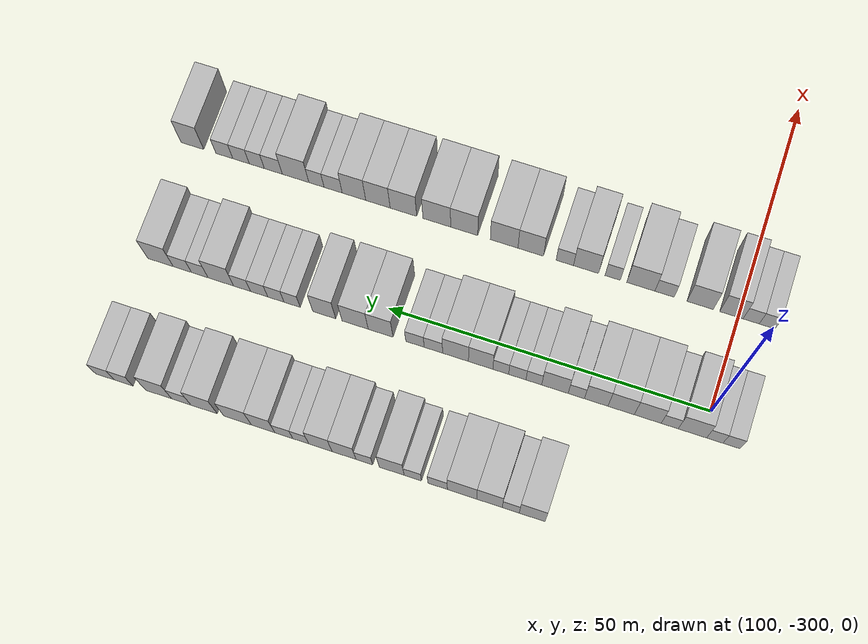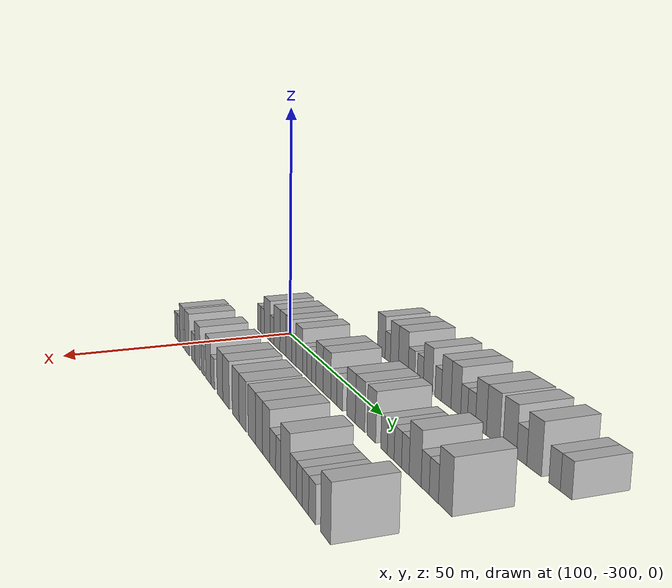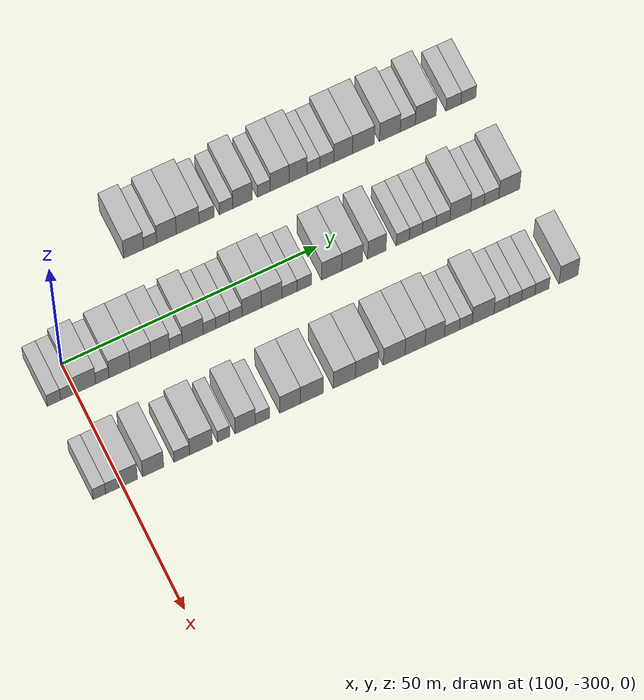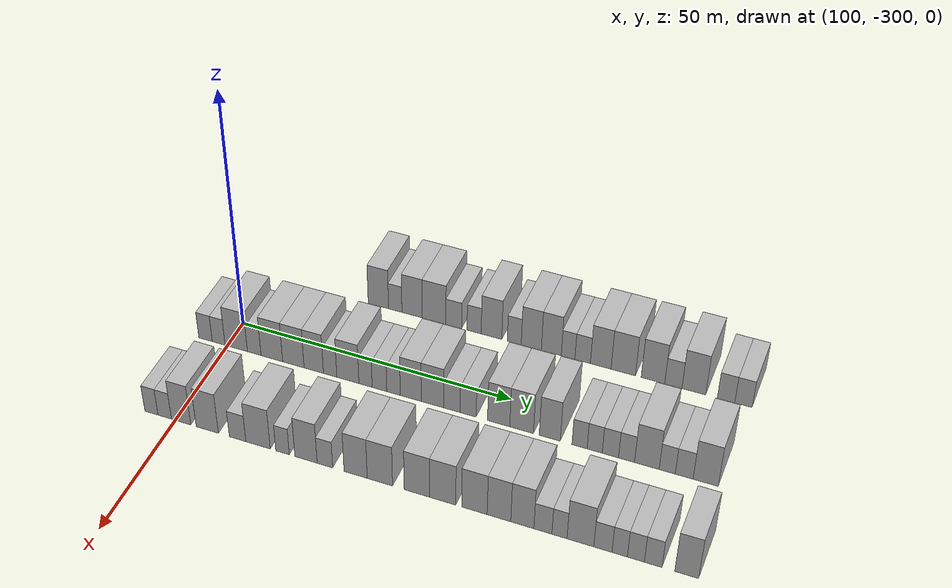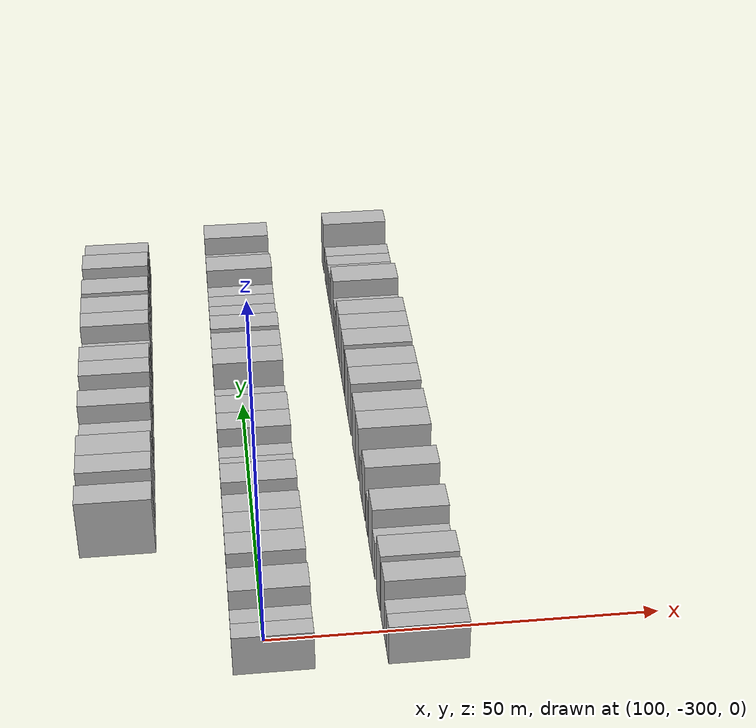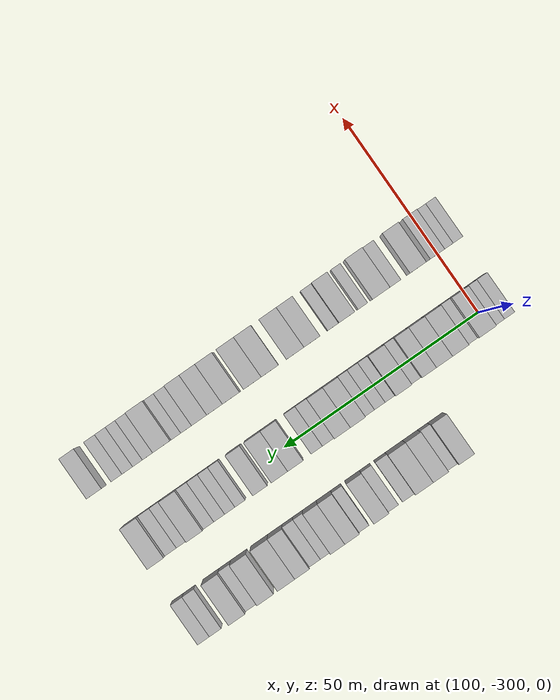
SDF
<sdf version="1.6">
 <world name="default">
  <model name="building_547">
   <static>1</static>
   <pose>82.0000 -279.7704 0 0.000000 0.000000 0.000000</pose>
   <link name="link">
    <pose>0 0 4.50 0 0 0</pose>
    <collision name="collision"><geometry><box><size>10.0000 3.9031 9.0000</size></box></geometry></collision>
    <visual name="visual">
     <cast_shadows>0</cast_shadows>
     <geometry><box><size>10.0000 3.9031 9.0000</size></box></geometry>
     <material>
      <script>
       <uri>model://HANNAS_wall/materials/scripts</uri>
       <uri>model://HANNAS_wall/materials/textures</uri>
       <name>vrc/HANNAS_wall</name>
      </script>
     </material>
    </visual>
   </link>
  </model>
  <model name="building_548">
   <static>1</static>
   <pose>82.0000 -276.5370 0 0.000000 0.000000 0.000000</pose>
   <link name="link">
    <pose>0 0 3.00 0 0 0</pose>
    <collision name="collision"><geometry><box><size>10.0000 2.5638 6.0000</size></box></geometry></collision>
    <visual name="visual">
     <cast_shadows>0</cast_shadows>
     <geometry><box><size>10.0000 2.5638 6.0000</size></box></geometry>
     <material>
      <script>
       <uri>model://HANNAS_wall/materials/scripts</uri>
       <uri>model://HANNAS_wall/materials/textures</uri>
       <name>vrc/HANNAS_wall</name>
      </script>
     </material>
    </visual>
   </link>
  </model>
  <model name="building_549">
   <static>1</static>
   <pose>82.0000 -273.3241 0 0.000000 0.000000 0.000000</pose>
   <link name="link">
    <pose>0 0 4.50 0 0 0</pose>
    <collision name="collision"><geometry><box><size>10.0000 3.8620 9.0000</size></box></geometry></collision>
    <visual name="visual">
     <cast_shadows>0</cast_shadows>
     <geometry><box><size>10.0000 3.8620 9.0000</size></box></geometry>
     <material>
      <script>
       <uri>model://HANNAS_wall/materials/scripts</uri>
       <uri>model://HANNAS_wall/materials/textures</uri>
       <name>vrc/HANNAS_wall</name>
      </script>
     </material>
    </visual>
   </link>
  </model>
  <model name="building_550">
   <static>1</static>
   <pose>82.0000 -269.1544 0 0.000000 0.000000 0.000000</pose>
   <link name="link">
    <pose>0 0 4.50 0 0 0</pose>
    <collision name="collision"><geometry><box><size>10.0000 4.4774 9.0000</size></box></geometry></collision>
    <visual name="visual">
     <cast_shadows>0</cast_shadows>
     <geometry><box><size>10.0000 4.4774 9.0000</size></box></geometry>
     <material>
      <script>
       <uri>model://HANNAS_wall/materials/scripts</uri>
       <uri>model://HANNAS_wall/materials/textures</uri>
       <name>vrc/HANNAS_wall</name>
      </script>
     </material>
    </visual>
   </link>
  </model>
  <model name="building_551">
   <static>1</static>
   <pose>82.0000 -265.4341 0 0.000000 0.000000 0.000000</pose>
   <link name="link">
    <pose>0 0 3.00 0 0 0</pose>
    <collision name="collision"><geometry><box><size>10.0000 2.9632 6.0000</size></box></geometry></collision>
    <visual name="visual">
     <cast_shadows>0</cast_shadows>
     <geometry><box><size>10.0000 2.9632 6.0000</size></box></geometry>
     <material>
      <script>
       <uri>model://HANNAS_wall/materials/scripts</uri>
       <uri>model://HANNAS_wall/materials/textures</uri>
       <name>vrc/HANNAS_wall</name>
      </script>
     </material>
    </visual>
   </link>
  </model>
  <model name="building_552">
   <static>1</static>
   <pose>82.0000 -261.6336 0 0.000000 0.000000 0.000000</pose>
   <link name="link">
    <pose>0 0 3.00 0 0 0</pose>
    <collision name="collision"><geometry><box><size>10.0000 2.6379 6.0000</size></box></geometry></collision>
    <visual name="visual">
     <cast_shadows>0</cast_shadows>
     <geometry><box><size>10.0000 2.6379 6.0000</size></box></geometry>
     <material>
      <script>
       <uri>model://HANNAS_wall/materials/scripts</uri>
       <uri>model://HANNAS_wall/materials/textures</uri>
       <name>vrc/HANNAS_wall</name>
      </script>
     </material>
    </visual>
   </link>
  </model>
  <model name="building_553">
   <static>1</static>
   <pose>82.0000 -258.3983 0 0.000000 0.000000 0.000000</pose>
   <link name="link">
    <pose>0 0 4.50 0 0 0</pose>
    <collision name="collision"><geometry><box><size>10.0000 3.8327 9.0000</size></box></geometry></collision>
    <visual name="visual">
     <cast_shadows>0</cast_shadows>
     <geometry><box><size>10.0000 3.8327 9.0000</size></box></geometry>
     <material>
      <script>
       <uri>model://HANNAS_wall/materials/scripts</uri>
       <uri>model://HANNAS_wall/materials/textures</uri>
       <name>vrc/HANNAS_wall</name>
      </script>
     </material>
    </visual>
   </link>
  </model>
  <model name="building_554">
   <static>1</static>
   <pose>82.0000 -254.1981 0 0.000000 0.000000 0.000000</pose>
   <link name="link">
    <pose>0 0 3.00 0 0 0</pose>
    <collision name="collision"><geometry><box><size>10.0000 2.5676 6.0000</size></box></geometry></collision>
    <visual name="visual">
     <cast_shadows>0</cast_shadows>
     <geometry><box><size>10.0000 2.5676 6.0000</size></box></geometry>
     <material>
      <script>
       <uri>model://HANNAS_wall/materials/scripts</uri>
       <uri>model://HANNAS_wall/materials/textures</uri>
       <name>vrc/HANNAS_wall</name>
      </script>
     </material>
    </visual>
   </link>
  </model>
  <model name="building_555">
   <static>1</static>
   <pose>82.0000 -251.0721 0 0.000000 0.000000 0.000000</pose>
   <link name="link">
    <pose>0 0 4.50 0 0 0</pose>
    <collision name="collision"><geometry><box><size>10.0000 3.6845 9.0000</size></box></geometry></collision>
    <visual name="visual">
     <cast_shadows>0</cast_shadows>
     <geometry><box><size>10.0000 3.6845 9.0000</size></box></geometry>
     <material>
      <script>
       <uri>model://HANNAS_wall/materials/scripts</uri>
       <uri>model://HANNAS_wall/materials/textures</uri>
       <name>vrc/HANNAS_wall</name>
      </script>
     </material>
    </visual>
   </link>
  </model>
  <model name="building_556">
   <static>1</static>
   <pose>82.0000 -247.4219 0 0.000000 0.000000 0.000000</pose>
   <link name="link">
    <pose>0 0 4.50 0 0 0</pose>
    <collision name="collision"><geometry><box><size>10.0000 3.6160 9.0000</size></box></geometry></collision>
    <visual name="visual">
     <cast_shadows>0</cast_shadows>
     <geometry><box><size>10.0000 3.6160 9.0000</size></box></geometry>
     <material>
      <script>
       <uri>model://HANNAS_wall/materials/scripts</uri>
       <uri>model://HANNAS_wall/materials/textures</uri>
       <name>vrc/HANNAS_wall</name>
      </script>
     </material>
    </visual>
   </link>
  </model>
  <model name="building_557">
   <static>1</static>
   <pose>82.0000 -244.3826 0 0.000000 0.000000 0.000000</pose>
   <link name="link">
    <pose>0 0 3.00 0 0 0</pose>
    <collision name="collision"><geometry><box><size>10.0000 2.4626 6.0000</size></box></geometry></collision>
    <visual name="visual">
     <cast_shadows>0</cast_shadows>
     <geometry><box><size>10.0000 2.4626 6.0000</size></box></geometry>
     <material>
      <script>
       <uri>model://HANNAS_wall/materials/scripts</uri>
       <uri>model://HANNAS_wall/materials/textures</uri>
       <name>vrc/HANNAS_wall</name>
      </script>
     </material>
    </visual>
   </link>
  </model>
  <model name="building_558">
   <static>1</static>
   <pose>82.0000 -241.7609 0 0.000000 0.000000 0.000000</pose>
   <link name="link">
    <pose>0 0 3.00 0 0 0</pose>
    <collision name="collision"><geometry><box><size>10.0000 2.7807 6.0000</size></box></geometry></collision>
    <visual name="visual">
     <cast_shadows>0</cast_shadows>
     <geometry><box><size>10.0000 2.7807 6.0000</size></box></geometry>
     <material>
      <script>
       <uri>model://HANNAS_wall/materials/scripts</uri>
       <uri>model://HANNAS_wall/materials/textures</uri>
       <name>vrc/HANNAS_wall</name>
      </script>
     </material>
    </visual>
   </link>
  </model>
  <model name="building_559">
   <static>1</static>
   <pose>82.0000 -238.5294 0 0.000000 0.000000 0.000000</pose>
   <link name="link">
    <pose>0 0 4.50 0 0 0</pose>
    <collision name="collision"><geometry><box><size>10.0000 3.6822 9.0000</size></box></geometry></collision>
    <visual name="visual">
     <cast_shadows>0</cast_shadows>
     <geometry><box><size>10.0000 3.6822 9.0000</size></box></geometry>
     <material>
      <script>
       <uri>model://HANNAS_wall/materials/scripts</uri>
       <uri>model://HANNAS_wall/materials/textures</uri>
       <name>vrc/HANNAS_wall</name>
      </script>
     </material>
    </visual>
   </link>
  </model>
  <model name="building_560">
   <static>1</static>
   <pose>82.0000 -234.5174 0 0.000000 0.000000 0.000000</pose>
   <link name="link">
    <pose>0 0 4.50 0 0 0</pose>
    <collision name="collision"><geometry><box><size>10.0000 4.3418 9.0000</size></box></geometry></collision>
    <visual name="visual">
     <cast_shadows>0</cast_shadows>
     <geometry><box><size>10.0000 4.3418 9.0000</size></box></geometry>
     <material>
      <script>
       <uri>model://HANNAS_wall/materials/scripts</uri>
       <uri>model://HANNAS_wall/materials/textures</uri>
       <name>vrc/HANNAS_wall</name>
      </script>
     </material>
    </visual>
   </link>
  </model>
  <model name="building_561">
   <static>1</static>
   <pose>82.0000 -229.2752 0 0.000000 0.000000 0.000000</pose>
   <link name="link">
    <pose>0 0 4.50 0 0 0</pose>
    <collision name="collision"><geometry><box><size>10.0000 4.1427 9.0000</size></box></geometry></collision>
    <visual name="visual">
     <cast_shadows>0</cast_shadows>
     <geometry><box><size>10.0000 4.1427 9.0000</size></box></geometry>
     <material>
      <script>
       <uri>model://HANNAS_wall/materials/scripts</uri>
       <uri>model://HANNAS_wall/materials/textures</uri>
       <name>vrc/HANNAS_wall</name>
      </script>
     </material>
    </visual>
   </link>
  </model>
  <model name="building_562">
   <static>1</static>
   <pose>82.0000 -225.7088 0 0.000000 0.000000 0.000000</pose>
   <link name="link">
    <pose>0 0 3.00 0 0 0</pose>
    <collision name="collision"><geometry><box><size>10.0000 2.9901 6.0000</size></box></geometry></collision>
    <visual name="visual">
     <cast_shadows>0</cast_shadows>
     <geometry><box><size>10.0000 2.9901 6.0000</size></box></geometry>
     <material>
      <script>
       <uri>model://HANNAS_wall/materials/scripts</uri>
       <uri>model://HANNAS_wall/materials/textures</uri>
       <name>vrc/HANNAS_wall</name>
      </script>
     </material>
    </visual>
   </link>
  </model>
  <model name="building_563">
   <static>1</static>
   <pose>82.0000 -222.1534 0 0.000000 0.000000 0.000000</pose>
   <link name="link">
    <pose>0 0 4.50 0 0 0</pose>
    <collision name="collision"><geometry><box><size>10.0000 4.1207 9.0000</size></box></geometry></collision>
    <visual name="visual">
     <cast_shadows>0</cast_shadows>
     <geometry><box><size>10.0000 4.1207 9.0000</size></box></geometry>
     <material>
      <script>
       <uri>model://HANNAS_wall/materials/scripts</uri>
       <uri>model://HANNAS_wall/materials/textures</uri>
       <name>vrc/HANNAS_wall</name>
      </script>
     </material>
    </visual>
   </link>
  </model>
  <model name="building_564">
   <static>1</static>
   <pose>82.0000 -216.6007 0 0.000000 0.000000 0.000000</pose>
   <link name="link">
    <pose>0 0 3.00 0 0 0</pose>
    <collision name="collision"><geometry><box><size>10.0000 2.9846 6.0000</size></box></geometry></collision>
    <visual name="visual">
     <cast_shadows>0</cast_shadows>
     <geometry><box><size>10.0000 2.9846 6.0000</size></box></geometry>
     <material>
      <script>
       <uri>model://HANNAS_wall/materials/scripts</uri>
       <uri>model://HANNAS_wall/materials/textures</uri>
       <name>vrc/HANNAS_wall</name>
      </script>
     </material>
    </visual>
   </link>
  </model>
  <model name="building_565">
   <static>1</static>
   <pose>82.0000 -213.6250 0 0.000000 0.000000 0.000000</pose>
   <link name="link">
    <pose>0 0 3.00 0 0 0</pose>
    <collision name="collision"><geometry><box><size>10.0000 2.9668 6.0000</size></box></geometry></collision>
    <visual name="visual">
     <cast_shadows>0</cast_shadows>
     <geometry><box><size>10.0000 2.9668 6.0000</size></box></geometry>
     <material>
      <script>
       <uri>model://HANNAS_wall/materials/scripts</uri>
       <uri>model://HANNAS_wall/materials/textures</uri>
       <name>vrc/HANNAS_wall</name>
      </script>
     </material>
    </visual>
   </link>
  </model>
  <model name="building_717">
   <static>1</static>
   <pose>101.0000 -304.2684 0 0.000000 0.000000 0.000000</pose>
   <link name="link">
    <pose>0 0 3.00 0 0 0</pose>
    <collision name="collision"><geometry><box><size>10.0000 2.5972 6.0000</size></box></geometry></collision>
    <visual name="visual">
     <cast_shadows>0</cast_shadows>
     <geometry><box><size>10.0000 2.5972 6.0000</size></box></geometry>
     <material>
      <script>
       <uri>model://HANNAS_wall/materials/scripts</uri>
       <uri>model://HANNAS_wall/materials/textures</uri>
       <name>vrc/HANNAS_wall</name>
      </script>
     </material>
    </visual>
   </link>
  </model>
  <model name="building_718">
   <static>1</static>
   <pose>101.0000 -301.7253 0 0.000000 0.000000 0.000000</pose>
   <link name="link">
    <pose>0 0 3.00 0 0 0</pose>
    <collision name="collision"><geometry><box><size>10.0000 2.4889 6.0000</size></box></geometry></collision>
    <visual name="visual">
     <cast_shadows>0</cast_shadows>
     <geometry><box><size>10.0000 2.4889 6.0000</size></box></geometry>
     <material>
      <script>
       <uri>model://HANNAS_wall/materials/scripts</uri>
       <uri>model://HANNAS_wall/materials/textures</uri>
       <name>vrc/HANNAS_wall</name>
      </script>
     </material>
    </visual>
   </link>
  </model>
  <model name="building_719">
   <static>1</static>
   <pose>101.0000 -298.3286 0 0.000000 0.000000 0.000000</pose>
   <link name="link">
    <pose>0 0 4.50 0 0 0</pose>
    <collision name="collision"><geometry><box><size>10.0000 4.3046 9.0000</size></box></geometry></collision>
    <visual name="visual">
     <cast_shadows>0</cast_shadows>
     <geometry><box><size>10.0000 4.3046 9.0000</size></box></geometry>
     <material>
      <script>
       <uri>model://HANNAS_wall/materials/scripts</uri>
       <uri>model://HANNAS_wall/materials/textures</uri>
       <name>vrc/HANNAS_wall</name>
      </script>
     </material>
    </visual>
   </link>
  </model>
  <model name="building_720">
   <static>1</static>
   <pose>101.0000 -294.8789 0 0.000000 0.000000 0.000000</pose>
   <link name="link">
    <pose>0 0 3.00 0 0 0</pose>
    <collision name="collision"><geometry><box><size>10.0000 2.5947 6.0000</size></box></geometry></collision>
    <visual name="visual">
     <cast_shadows>0</cast_shadows>
     <geometry><box><size>10.0000 2.5947 6.0000</size></box></geometry>
     <material>
      <script>
       <uri>model://HANNAS_wall/materials/scripts</uri>
       <uri>model://HANNAS_wall/materials/textures</uri>
       <name>vrc/HANNAS_wall</name>
      </script>
     </material>
    </visual>
   </link>
  </model>
  <model name="building_721">
   <static>1</static>
   <pose>101.0000 -291.5294 0 0.000000 0.000000 0.000000</pose>
   <link name="link">
    <pose>0 0 4.50 0 0 0</pose>
    <collision name="collision"><geometry><box><size>10.0000 4.1044 9.0000</size></box></geometry></collision>
    <visual name="visual">
     <cast_shadows>0</cast_shadows>
     <geometry><box><size>10.0000 4.1044 9.0000</size></box></geometry>
     <material>
      <script>
       <uri>model://HANNAS_wall/materials/scripts</uri>
       <uri>model://HANNAS_wall/materials/textures</uri>
       <name>vrc/HANNAS_wall</name>
      </script>
     </material>
    </visual>
   </link>
  </model>
  <model name="building_722">
   <static>1</static>
   <pose>101.0000 -287.4542 0 0.000000 0.000000 0.000000</pose>
   <link name="link">
    <pose>0 0 4.50 0 0 0</pose>
    <collision name="collision"><geometry><box><size>10.0000 4.0460 9.0000</size></box></geometry></collision>
    <visual name="visual">
     <cast_shadows>0</cast_shadows>
     <geometry><box><size>10.0000 4.0460 9.0000</size></box></geometry>
     <material>
      <script>
       <uri>model://HANNAS_wall/materials/scripts</uri>
       <uri>model://HANNAS_wall/materials/textures</uri>
       <name>vrc/HANNAS_wall</name>
      </script>
     </material>
    </visual>
   </link>
  </model>
  <model name="building_723">
   <static>1</static>
   <pose>101.0000 -283.6217 0 0.000000 0.000000 0.000000</pose>
   <link name="link">
    <pose>0 0 4.50 0 0 0</pose>
    <collision name="collision"><geometry><box><size>10.0000 3.6190 9.0000</size></box></geometry></collision>
    <visual name="visual">
     <cast_shadows>0</cast_shadows>
     <geometry><box><size>10.0000 3.6190 9.0000</size></box></geometry>
     <material>
      <script>
       <uri>model://HANNAS_wall/materials/scripts</uri>
       <uri>model://HANNAS_wall/materials/textures</uri>
       <name>vrc/HANNAS_wall</name>
      </script>
     </material>
    </visual>
   </link>
  </model>
  <model name="building_724">
   <static>1</static>
   <pose>101.0000 -280.5637 0 0.000000 0.000000 0.000000</pose>
   <link name="link">
    <pose>0 0 3.00 0 0 0</pose>
    <collision name="collision"><geometry><box><size>10.0000 2.4968 6.0000</size></box></geometry></collision>
    <visual name="visual">
     <cast_shadows>0</cast_shadows>
     <geometry><box><size>10.0000 2.4968 6.0000</size></box></geometry>
     <material>
      <script>
       <uri>model://HANNAS_wall/materials/scripts</uri>
       <uri>model://HANNAS_wall/materials/textures</uri>
       <name>vrc/HANNAS_wall</name>
      </script>
     </material>
    </visual>
   </link>
  </model>
  <model name="building_725">
   <static>1</static>
   <pose>101.0000 -277.2746 0 0.000000 0.000000 0.000000</pose>
   <link name="link">
    <pose>0 0 4.50 0 0 0</pose>
    <collision name="collision"><geometry><box><size>10.0000 4.0814 9.0000</size></box></geometry></collision>
    <visual name="visual">
     <cast_shadows>0</cast_shadows>
     <geometry><box><size>10.0000 4.0814 9.0000</size></box></geometry>
     <material>
      <script>
       <uri>model://HANNAS_wall/materials/scripts</uri>
       <uri>model://HANNAS_wall/materials/textures</uri>
       <name>vrc/HANNAS_wall</name>
      </script>
     </material>
    </visual>
   </link>
  </model>
  <model name="building_726">
   <static>1</static>
   <pose>101.0000 -274.0199 0 0.000000 0.000000 0.000000</pose>
   <link name="link">
    <pose>0 0 3.00 0 0 0</pose>
    <collision name="collision"><geometry><box><size>10.0000 2.4280 6.0000</size></box></geometry></collision>
    <visual name="visual">
     <cast_shadows>0</cast_shadows>
     <geometry><box><size>10.0000 2.4280 6.0000</size></box></geometry>
     <material>
      <script>
       <uri>model://HANNAS_wall/materials/scripts</uri>
       <uri>model://HANNAS_wall/materials/textures</uri>
       <name>vrc/HANNAS_wall</name>
      </script>
     </material>
    </visual>
   </link>
  </model>
  <model name="building_727">
   <static>1</static>
   <pose>101.0000 -271.4647 0 0.000000 0.000000 0.000000</pose>
   <link name="link">
    <pose>0 0 3.00 0 0 0</pose>
    <collision name="collision"><geometry><box><size>10.0000 2.6826 6.0000</size></box></geometry></collision>
    <visual name="visual">
     <cast_shadows>0</cast_shadows>
     <geometry><box><size>10.0000 2.6826 6.0000</size></box></geometry>
     <material>
      <script>
       <uri>model://HANNAS_wall/materials/scripts</uri>
       <uri>model://HANNAS_wall/materials/textures</uri>
       <name>vrc/HANNAS_wall</name>
      </script>
     </material>
    </visual>
   </link>
  </model>
  <model name="building_728">
   <static>1</static>
   <pose>101.0000 -268.8991 0 0.000000 0.000000 0.000000</pose>
   <link name="link">
    <pose>0 0 3.00 0 0 0</pose>
    <collision name="collision"><geometry><box><size>10.0000 2.4485 6.0000</size></box></geometry></collision>
    <visual name="visual">
     <cast_shadows>0</cast_shadows>
     <geometry><box><size>10.0000 2.4485 6.0000</size></box></geometry>
     <material>
      <script>
       <uri>model://HANNAS_wall/materials/scripts</uri>
       <uri>model://HANNAS_wall/materials/textures</uri>
       <name>vrc/HANNAS_wall</name>
      </script>
     </material>
    </visual>
   </link>
  </model>
  <model name="building_729">
   <static>1</static>
   <pose>101.0000 -265.7759 0 0.000000 0.000000 0.000000</pose>
   <link name="link">
    <pose>0 0 4.50 0 0 0</pose>
    <collision name="collision"><geometry><box><size>10.0000 3.7979 9.0000</size></box></geometry></collision>
    <visual name="visual">
     <cast_shadows>0</cast_shadows>
     <geometry><box><size>10.0000 3.7979 9.0000</size></box></geometry>
     <material>
      <script>
       <uri>model://HANNAS_wall/materials/scripts</uri>
       <uri>model://HANNAS_wall/materials/textures</uri>
       <name>vrc/HANNAS_wall</name>
      </script>
     </material>
    </visual>
   </link>
  </model>
  <model name="building_730">
   <static>1</static>
   <pose>101.0000 -261.8637 0 0.000000 0.000000 0.000000</pose>
   <link name="link">
    <pose>0 0 4.50 0 0 0</pose>
    <collision name="collision"><geometry><box><size>10.0000 4.0265 9.0000</size></box></geometry></collision>
    <visual name="visual">
     <cast_shadows>0</cast_shadows>
     <geometry><box><size>10.0000 4.0265 9.0000</size></box></geometry>
     <material>
      <script>
       <uri>model://HANNAS_wall/materials/scripts</uri>
       <uri>model://HANNAS_wall/materials/textures</uri>
       <name>vrc/HANNAS_wall</name>
      </script>
     </material>
    </visual>
   </link>
  </model>
  <model name="building_731">
   <static>1</static>
   <pose>101.0000 -258.4030 0 0.000000 0.000000 0.000000</pose>
   <link name="link">
    <pose>0 0 3.00 0 0 0</pose>
    <collision name="collision"><geometry><box><size>10.0000 2.8949 6.0000</size></box></geometry></collision>
    <visual name="visual">
     <cast_shadows>0</cast_shadows>
     <geometry><box><size>10.0000 2.8949 6.0000</size></box></geometry>
     <material>
      <script>
       <uri>model://HANNAS_wall/materials/scripts</uri>
       <uri>model://HANNAS_wall/materials/textures</uri>
       <name>vrc/HANNAS_wall</name>
      </script>
     </material>
    </visual>
   </link>
  </model>
  <model name="building_732">
   <static>1</static>
   <pose>101.0000 -255.5151 0 0.000000 0.000000 0.000000</pose>
   <link name="link">
    <pose>0 0 3.00 0 0 0</pose>
    <collision name="collision"><geometry><box><size>10.0000 2.8809 6.0000</size></box></geometry></collision>
    <visual name="visual">
     <cast_shadows>0</cast_shadows>
     <geometry><box><size>10.0000 2.8809 6.0000</size></box></geometry>
     <material>
      <script>
       <uri>model://HANNAS_wall/materials/scripts</uri>
       <uri>model://HANNAS_wall/materials/textures</uri>
       <name>vrc/HANNAS_wall</name>
      </script>
     </material>
    </visual>
   </link>
  </model>
  <model name="building_733">
   <static>1</static>
   <pose>101.0000 -250.1223 0 0.000000 0.000000 0.000000</pose>
   <link name="link">
    <pose>0 0 4.50 0 0 0</pose>
    <collision name="collision"><geometry><box><size>10.0000 3.9047 9.0000</size></box></geometry></collision>
    <visual name="visual">
     <cast_shadows>0</cast_shadows>
     <geometry><box><size>10.0000 3.9047 9.0000</size></box></geometry>
     <material>
      <script>
       <uri>model://HANNAS_wall/materials/scripts</uri>
       <uri>model://HANNAS_wall/materials/textures</uri>
       <name>vrc/HANNAS_wall</name>
      </script>
     </material>
    </visual>
   </link>
  </model>
  <model name="building_734">
   <static>1</static>
   <pose>101.0000 -246.1049 0 0.000000 0.000000 0.000000</pose>
   <link name="link">
    <pose>0 0 4.50 0 0 0</pose>
    <collision name="collision"><geometry><box><size>10.0000 4.1301 9.0000</size></box></geometry></collision>
    <visual name="visual">
     <cast_shadows>0</cast_shadows>
     <geometry><box><size>10.0000 4.1301 9.0000</size></box></geometry>
     <material>
      <script>
       <uri>model://HANNAS_wall/materials/scripts</uri>
       <uri>model://HANNAS_wall/materials/textures</uri>
       <name>vrc/HANNAS_wall</name>
      </script>
     </material>
    </visual>
   </link>
  </model>
  <model name="building_735">
   <static>1</static>
   <pose>101.0000 -241.2241 0 0.000000 0.000000 0.000000</pose>
   <link name="link">
    <pose>0 0 4.50 0 0 0</pose>
    <collision name="collision"><geometry><box><size>10.0000 3.6315 9.0000</size></box></geometry></collision>
    <visual name="visual">
     <cast_shadows>0</cast_shadows>
     <geometry><box><size>10.0000 3.6315 9.0000</size></box></geometry>
     <material>
      <script>
       <uri>model://HANNAS_wall/materials/scripts</uri>
       <uri>model://HANNAS_wall/materials/textures</uri>
       <name>vrc/HANNAS_wall</name>
      </script>
     </material>
    </visual>
   </link>
  </model>
  <model name="building_736">
   <static>1</static>
   <pose>101.0000 -236.1231 0 0.000000 0.000000 0.000000</pose>
   <link name="link">
    <pose>0 0 3.00 0 0 0</pose>
    <collision name="collision"><geometry><box><size>10.0000 2.5705 6.0000</size></box></geometry></collision>
    <visual name="visual">
     <cast_shadows>0</cast_shadows>
     <geometry><box><size>10.0000 2.5705 6.0000</size></box></geometry>
     <material>
      <script>
       <uri>model://HANNAS_wall/materials/scripts</uri>
       <uri>model://HANNAS_wall/materials/textures</uri>
       <name>vrc/HANNAS_wall</name>
      </script>
     </material>
    </visual>
   </link>
  </model>
  <model name="building_737">
   <static>1</static>
   <pose>101.0000 -233.5463 0 0.000000 0.000000 0.000000</pose>
   <link name="link">
    <pose>0 0 3.00 0 0 0</pose>
    <collision name="collision"><geometry><box><size>10.0000 2.5832 6.0000</size></box></geometry></collision>
    <visual name="visual">
     <cast_shadows>0</cast_shadows>
     <geometry><box><size>10.0000 2.5832 6.0000</size></box></geometry>
     <material>
      <script>
       <uri>model://HANNAS_wall/materials/scripts</uri>
       <uri>model://HANNAS_wall/materials/textures</uri>
       <name>vrc/HANNAS_wall</name>
      </script>
     </material>
    </visual>
   </link>
  </model>
  <model name="building_738">
   <static>1</static>
   <pose>101.0000 -230.8788 0 0.000000 0.000000 0.000000</pose>
   <link name="link">
    <pose>0 0 3.00 0 0 0</pose>
    <collision name="collision"><geometry><box><size>10.0000 2.7518 6.0000</size></box></geometry></collision>
    <visual name="visual">
     <cast_shadows>0</cast_shadows>
     <geometry><box><size>10.0000 2.7518 6.0000</size></box></geometry>
     <material>
      <script>
       <uri>model://HANNAS_wall/materials/scripts</uri>
       <uri>model://HANNAS_wall/materials/textures</uri>
       <name>vrc/HANNAS_wall</name>
      </script>
     </material>
    </visual>
   </link>
  </model>
  <model name="building_739">
   <static>1</static>
   <pose>101.0000 -228.1563 0 0.000000 0.000000 0.000000</pose>
   <link name="link">
    <pose>0 0 3.00 0 0 0</pose>
    <collision name="collision"><geometry><box><size>10.0000 2.6932 6.0000</size></box></geometry></collision>
    <visual name="visual">
     <cast_shadows>0</cast_shadows>
     <geometry><box><size>10.0000 2.6932 6.0000</size></box></geometry>
     <material>
      <script>
       <uri>model://HANNAS_wall/materials/scripts</uri>
       <uri>model://HANNAS_wall/materials/textures</uri>
       <name>vrc/HANNAS_wall</name>
      </script>
     </material>
    </visual>
   </link>
  </model>
  <model name="building_740">
   <static>1</static>
   <pose>101.0000 -224.7546 0 0.000000 0.000000 0.000000</pose>
   <link name="link">
    <pose>0 0 4.50 0 0 0</pose>
    <collision name="collision"><geometry><box><size>10.0000 4.1101 9.0000</size></box></geometry></collision>
    <visual name="visual">
     <cast_shadows>0</cast_shadows>
     <geometry><box><size>10.0000 4.1101 9.0000</size></box></geometry>
     <material>
      <script>
       <uri>model://HANNAS_wall/materials/scripts</uri>
       <uri>model://HANNAS_wall/materials/textures</uri>
       <name>vrc/HANNAS_wall</name>
      </script>
     </material>
    </visual>
   </link>
  </model>
  <model name="building_741">
   <static>1</static>
   <pose>101.0000 -221.3644 0 0.000000 0.000000 0.000000</pose>
   <link name="link">
    <pose>0 0 3.00 0 0 0</pose>
    <collision name="collision"><geometry><box><size>10.0000 2.6703 6.0000</size></box></geometry></collision>
    <visual name="visual">
     <cast_shadows>0</cast_shadows>
     <geometry><box><size>10.0000 2.6703 6.0000</size></box></geometry>
     <material>
      <script>
       <uri>model://HANNAS_wall/materials/scripts</uri>
       <uri>model://HANNAS_wall/materials/textures</uri>
       <name>vrc/HANNAS_wall</name>
      </script>
     </material>
    </visual>
   </link>
  </model>
  <model name="building_742">
   <static>1</static>
   <pose>101.0000 -218.5651 0 0.000000 0.000000 0.000000</pose>
   <link name="link">
    <pose>0 0 3.00 0 0 0</pose>
    <collision name="collision"><geometry><box><size>10.0000 2.9282 6.0000</size></box></geometry></collision>
    <visual name="visual">
     <cast_shadows>0</cast_shadows>
     <geometry><box><size>10.0000 2.9282 6.0000</size></box></geometry>
     <material>
      <script>
       <uri>model://HANNAS_wall/materials/scripts</uri>
       <uri>model://HANNAS_wall/materials/textures</uri>
       <name>vrc/HANNAS_wall</name>
      </script>
     </material>
    </visual>
   </link>
  </model>
  <model name="building_743">
   <static>1</static>
   <pose>101.0000 -215.0339 0 0.000000 0.000000 0.000000</pose>
   <link name="link">
    <pose>0 0 4.50 0 0 0</pose>
    <collision name="collision"><geometry><box><size>10.0000 4.1342 9.0000</size></box></geometry></collision>
    <visual name="visual">
     <cast_shadows>0</cast_shadows>
     <geometry><box><size>10.0000 4.1342 9.0000</size></box></geometry>
     <material>
      <script>
       <uri>model://HANNAS_wall/materials/scripts</uri>
       <uri>model://HANNAS_wall/materials/textures</uri>
       <name>vrc/HANNAS_wall</name>
      </script>
     </material>
    </visual>
   </link>
  </model>
  <model name="building_890">
   <static>1</static>
   <pose>120.0000 -304.4766 0 0.000000 0.000000 0.000000</pose>
   <link name="link">
    <pose>0 0 3.00 0 0 0</pose>
    <collision name="collision"><geometry><box><size>10.0000 2.4595 6.0000</size></box></geometry></collision>
    <visual name="visual">
     <cast_shadows>0</cast_shadows>
     <geometry><box><size>10.0000 2.4595 6.0000</size></box></geometry>
     <material>
      <script>
       <uri>model://HANNAS_wall/materials/scripts</uri>
       <uri>model://HANNAS_wall/materials/textures</uri>
       <name>vrc/HANNAS_wall</name>
      </script>
     </material>
    </visual>
   </link>
  </model>
  <model name="building_891">
   <static>1</static>
   <pose>120.0000 -301.9950 0 0.000000 0.000000 0.000000</pose>
   <link name="link">
    <pose>0 0 3.00 0 0 0</pose>
    <collision name="collision"><geometry><box><size>10.0000 2.5037 6.0000</size></box></geometry></collision>
    <visual name="visual">
     <cast_shadows>0</cast_shadows>
     <geometry><box><size>10.0000 2.5037 6.0000</size></box></geometry>
     <material>
      <script>
       <uri>model://HANNAS_wall/materials/scripts</uri>
       <uri>model://HANNAS_wall/materials/textures</uri>
       <name>vrc/HANNAS_wall</name>
      </script>
     </material>
    </visual>
   </link>
  </model>
  <model name="building_892">
   <static>1</static>
   <pose>120.0000 -298.9387 0 0.000000 0.000000 0.000000</pose>
   <link name="link">
    <pose>0 0 4.50 0 0 0</pose>
    <collision name="collision"><geometry><box><size>10.0000 3.6088 9.0000</size></box></geometry></collision>
    <visual name="visual">
     <cast_shadows>0</cast_shadows>
     <geometry><box><size>10.0000 3.6088 9.0000</size></box></geometry>
     <material>
      <script>
       <uri>model://HANNAS_wall/materials/scripts</uri>
       <uri>model://HANNAS_wall/materials/textures</uri>
       <name>vrc/HANNAS_wall</name>
      </script>
     </material>
    </visual>
   </link>
  </model>
  <model name="building_893">
   <static>1</static>
   <pose>120.0000 -294.0916 0 0.000000 0.000000 0.000000</pose>
   <link name="link">
    <pose>0 0 4.50 0 0 0</pose>
    <collision name="collision"><geometry><box><size>10.0000 4.0853 9.0000</size></box></geometry></collision>
    <visual name="visual">
     <cast_shadows>0</cast_shadows>
     <geometry><box><size>10.0000 4.0853 9.0000</size></box></geometry>
     <material>
      <script>
       <uri>model://HANNAS_wall/materials/scripts</uri>
       <uri>model://HANNAS_wall/materials/textures</uri>
       <name>vrc/HANNAS_wall</name>
      </script>
     </material>
    </visual>
   </link>
  </model>
  <model name="building_894">
   <static>1</static>
   <pose>120.0000 -288.5498 0 0.000000 0.000000 0.000000</pose>
   <link name="link">
    <pose>0 0 3.00 0 0 0</pose>
    <collision name="collision"><geometry><box><size>10.0000 2.9984 6.0000</size></box></geometry></collision>
    <visual name="visual">
     <cast_shadows>0</cast_shadows>
     <geometry><box><size>10.0000 2.9984 6.0000</size></box></geometry>
     <material>
      <script>
       <uri>model://HANNAS_wall/materials/scripts</uri>
       <uri>model://HANNAS_wall/materials/textures</uri>
       <name>vrc/HANNAS_wall</name>
      </script>
     </material>
    </visual>
   </link>
  </model>
  <model name="building_895">
   <static>1</static>
   <pose>120.0000 -284.8458 0 0.000000 0.000000 0.000000</pose>
   <link name="link">
    <pose>0 0 4.50 0 0 0</pose>
    <collision name="collision"><geometry><box><size>10.0000 4.4096 9.0000</size></box></geometry></collision>
    <visual name="visual">
     <cast_shadows>0</cast_shadows>
     <geometry><box><size>10.0000 4.4096 9.0000</size></box></geometry>
     <material>
      <script>
       <uri>model://HANNAS_wall/materials/scripts</uri>
       <uri>model://HANNAS_wall/materials/textures</uri>
       <name>vrc/HANNAS_wall</name>
      </script>
     </material>
    </visual>
   </link>
  </model>
  <model name="building_896">
   <static>1</static>
   <pose>120.0000 -280.4334 0 0.000000 0.000000 0.000000</pose>
   <link name="link">
    <pose>0 0 3.00 0 0 0</pose>
    <collision name="collision"><geometry><box><size>10.0000 2.4152 6.0000</size></box></geometry></collision>
    <visual name="visual">
     <cast_shadows>0</cast_shadows>
     <geometry><box><size>10.0000 2.4152 6.0000</size></box></geometry>
     <material>
      <script>
       <uri>model://HANNAS_wall/materials/scripts</uri>
       <uri>model://HANNAS_wall/materials/textures</uri>
       <name>vrc/HANNAS_wall</name>
      </script>
     </material>
    </visual>
   </link>
  </model>
  <model name="building_897">
   <static>1</static>
   <pose>120.0000 -276.2511 0 0.000000 0.000000 0.000000</pose>
   <link name="link">
    <pose>0 0 4.50 0 0 0</pose>
    <collision name="collision"><geometry><box><size>10.0000 3.9494 9.0000</size></box></geometry></collision>
    <visual name="visual">
     <cast_shadows>0</cast_shadows>
     <geometry><box><size>10.0000 3.9494 9.0000</size></box></geometry>
     <material>
      <script>
       <uri>model://HANNAS_wall/materials/scripts</uri>
       <uri>model://HANNAS_wall/materials/textures</uri>
       <name>vrc/HANNAS_wall</name>
      </script>
     </material>
    </visual>
   </link>
  </model>
  <model name="building_898">
   <static>1</static>
   <pose>120.0000 -272.9068 0 0.000000 0.000000 0.000000</pose>
   <link name="link">
    <pose>0 0 3.00 0 0 0</pose>
    <collision name="collision"><geometry><box><size>10.0000 2.7393 6.0000</size></box></geometry></collision>
    <visual name="visual">
     <cast_shadows>0</cast_shadows>
     <geometry><box><size>10.0000 2.7393 6.0000</size></box></geometry>
     <material>
      <script>
       <uri>model://HANNAS_wall/materials/scripts</uri>
       <uri>model://HANNAS_wall/materials/textures</uri>
       <name>vrc/HANNAS_wall</name>
      </script>
     </material>
    </visual>
   </link>
  </model>
  <model name="building_899">
   <static>1</static>
   <pose>120.0000 -267.5144 0 0.000000 0.000000 0.000000</pose>
   <link name="link">
    <pose>0 0 4.50 0 0 0</pose>
    <collision name="collision"><geometry><box><size>10.0000 4.0454 9.0000</size></box></geometry></collision>
    <visual name="visual">
     <cast_shadows>0</cast_shadows>
     <geometry><box><size>10.0000 4.0454 9.0000</size></box></geometry>
     <material>
      <script>
       <uri>model://HANNAS_wall/materials/scripts</uri>
       <uri>model://HANNAS_wall/materials/textures</uri>
       <name>vrc/HANNAS_wall</name>
      </script>
     </material>
    </visual>
   </link>
  </model>
  <model name="building_900">
   <static>1</static>
   <pose>120.0000 -263.2974 0 0.000000 0.000000 0.000000</pose>
   <link name="link">
    <pose>0 0 4.50 0 0 0</pose>
    <collision name="collision"><geometry><box><size>10.0000 4.3886 9.0000</size></box></geometry></collision>
    <visual name="visual">
     <cast_shadows>0</cast_shadows>
     <geometry><box><size>10.0000 4.3886 9.0000</size></box></geometry>
     <material>
      <script>
       <uri>model://HANNAS_wall/materials/scripts</uri>
       <uri>model://HANNAS_wall/materials/textures</uri>
       <name>vrc/HANNAS_wall</name>
      </script>
     </material>
    </visual>
   </link>
  </model>
  <model name="building_901">
   <static>1</static>
   <pose>120.0000 -256.9468 0 0.000000 0.000000 0.000000</pose>
   <link name="link">
    <pose>0 0 4.50 0 0 0</pose>
    <collision name="collision"><geometry><box><size>10.0000 4.3127 9.0000</size></box></geometry></collision>
    <visual name="visual">
     <cast_shadows>0</cast_shadows>
     <geometry><box><size>10.0000 4.3127 9.0000</size></box></geometry>
     <material>
      <script>
       <uri>model://HANNAS_wall/materials/scripts</uri>
       <uri>model://HANNAS_wall/materials/textures</uri>
       <name>vrc/HANNAS_wall</name>
      </script>
     </material>
    </visual>
   </link>
  </model>
  <model name="building_902">
   <static>1</static>
   <pose>120.0000 -252.5692 0 0.000000 0.000000 0.000000</pose>
   <link name="link">
    <pose>0 0 4.50 0 0 0</pose>
    <collision name="collision"><geometry><box><size>10.0000 4.4424 9.0000</size></box></geometry></collision>
    <visual name="visual">
     <cast_shadows>0</cast_shadows>
     <geometry><box><size>10.0000 4.4424 9.0000</size></box></geometry>
     <material>
      <script>
       <uri>model://HANNAS_wall/materials/scripts</uri>
       <uri>model://HANNAS_wall/materials/textures</uri>
       <name>vrc/HANNAS_wall</name>
      </script>
     </material>
    </visual>
   </link>
  </model>
  <model name="building_903">
   <static>1</static>
   <pose>120.0000 -247.2138 0 0.000000 0.000000 0.000000</pose>
   <link name="link">
    <pose>0 0 4.50 0 0 0</pose>
    <collision name="collision"><geometry><box><size>10.0000 4.2683 9.0000</size></box></geometry></collision>
    <visual name="visual">
     <cast_shadows>0</cast_shadows>
     <geometry><box><size>10.0000 4.2683 9.0000</size></box></geometry>
     <material>
      <script>
       <uri>model://HANNAS_wall/materials/scripts</uri>
       <uri>model://HANNAS_wall/materials/textures</uri>
       <name>vrc/HANNAS_wall</name>
      </script>
     </material>
    </visual>
   </link>
  </model>
  <model name="building_904">
   <static>1</static>
   <pose>120.0000 -243.1163 0 0.000000 0.000000 0.000000</pose>
   <link name="link">
    <pose>0 0 4.50 0 0 0</pose>
    <collision name="collision"><geometry><box><size>10.0000 3.9267 9.0000</size></box></geometry></collision>
    <visual name="visual">
     <cast_shadows>0</cast_shadows>
     <geometry><box><size>10.0000 3.9267 9.0000</size></box></geometry>
     <material>
      <script>
       <uri>model://HANNAS_wall/materials/scripts</uri>
       <uri>model://HANNAS_wall/materials/textures</uri>
       <name>vrc/HANNAS_wall</name>
      </script>
     </material>
    </visual>
   </link>
  </model>
  <model name="building_905">
   <static>1</static>
   <pose>120.0000 -239.2484 0 0.000000 0.000000 0.000000</pose>
   <link name="link">
    <pose>0 0 4.50 0 0 0</pose>
    <collision name="collision"><geometry><box><size>10.0000 3.8091 9.0000</size></box></geometry></collision>
    <visual name="visual">
     <cast_shadows>0</cast_shadows>
     <geometry><box><size>10.0000 3.8091 9.0000</size></box></geometry>
     <material>
      <script>
       <uri>model://HANNAS_wall/materials/scripts</uri>
       <uri>model://HANNAS_wall/materials/textures</uri>
       <name>vrc/HANNAS_wall</name>
      </script>
     </material>
    </visual>
   </link>
  </model>
  <model name="building_906">
   <static>1</static>
   <pose>120.0000 -235.8725 0 0.000000 0.000000 0.000000</pose>
   <link name="link">
    <pose>0 0 3.00 0 0 0</pose>
    <collision name="collision"><geometry><box><size>10.0000 2.9428 6.0000</size></box></geometry></collision>
    <visual name="visual">
     <cast_shadows>0</cast_shadows>
     <geometry><box><size>10.0000 2.9428 6.0000</size></box></geometry>
     <material>
      <script>
       <uri>model://HANNAS_wall/materials/scripts</uri>
       <uri>model://HANNAS_wall/materials/textures</uri>
       <name>vrc/HANNAS_wall</name>
      </script>
     </material>
    </visual>
   </link>
  </model>
  <model name="building_907">
   <static>1</static>
   <pose>120.0000 -233.1714 0 0.000000 0.000000 0.000000</pose>
   <link name="link">
    <pose>0 0 3.00 0 0 0</pose>
    <collision name="collision"><geometry><box><size>10.0000 2.4593 6.0000</size></box></geometry></collision>
    <visual name="visual">
     <cast_shadows>0</cast_shadows>
     <geometry><box><size>10.0000 2.4593 6.0000</size></box></geometry>
     <material>
      <script>
       <uri>model://HANNAS_wall/materials/scripts</uri>
       <uri>model://HANNAS_wall/materials/textures</uri>
       <name>vrc/HANNAS_wall</name>
      </script>
     </material>
    </visual>
   </link>
  </model>
  <model name="building_908">
   <static>1</static>
   <pose>120.0000 -229.7750 0 0.000000 0.000000 0.000000</pose>
   <link name="link">
    <pose>0 0 4.50 0 0 0</pose>
    <collision name="collision"><geometry><box><size>10.0000 4.3335 9.0000</size></box></geometry></collision>
    <visual name="visual">
     <cast_shadows>0</cast_shadows>
     <geometry><box><size>10.0000 4.3335 9.0000</size></box></geometry>
     <material>
      <script>
       <uri>model://HANNAS_wall/materials/scripts</uri>
       <uri>model://HANNAS_wall/materials/textures</uri>
       <name>vrc/HANNAS_wall</name>
      </script>
     </material>
    </visual>
   </link>
  </model>
  <model name="building_909">
   <static>1</static>
   <pose>120.0000 -226.1489 0 0.000000 0.000000 0.000000</pose>
   <link name="link">
    <pose>0 0 3.00 0 0 0</pose>
    <collision name="collision"><geometry><box><size>10.0000 2.9187 6.0000</size></box></geometry></collision>
    <visual name="visual">
     <cast_shadows>0</cast_shadows>
     <geometry><box><size>10.0000 2.9187 6.0000</size></box></geometry>
     <material>
      <script>
       <uri>model://HANNAS_wall/materials/scripts</uri>
       <uri>model://HANNAS_wall/materials/textures</uri>
       <name>vrc/HANNAS_wall</name>
      </script>
     </material>
    </visual>
   </link>
  </model>
  <model name="building_910">
   <static>1</static>
   <pose>120.0000 -223.4626 0 0.000000 0.000000 0.000000</pose>
   <link name="link">
    <pose>0 0 3.00 0 0 0</pose>
    <collision name="collision"><geometry><box><size>10.0000 2.4539 6.0000</size></box></geometry></collision>
    <visual name="visual">
     <cast_shadows>0</cast_shadows>
     <geometry><box><size>10.0000 2.4539 6.0000</size></box></geometry>
     <material>
      <script>
       <uri>model://HANNAS_wall/materials/scripts</uri>
       <uri>model://HANNAS_wall/materials/textures</uri>
       <name>vrc/HANNAS_wall</name>
      </script>
     </material>
    </visual>
   </link>
  </model>
  <model name="building_911">
   <static>1</static>
   <pose>120.0000 -220.8912 0 0.000000 0.000000 0.000000</pose>
   <link name="link">
    <pose>0 0 3.00 0 0 0</pose>
    <collision name="collision"><geometry><box><size>10.0000 2.6889 6.0000</size></box></geometry></collision>
    <visual name="visual">
     <cast_shadows>0</cast_shadows>
     <geometry><box><size>10.0000 2.6889 6.0000</size></box></geometry>
     <material>
      <script>
       <uri>model://HANNAS_wall/materials/scripts</uri>
       <uri>model://HANNAS_wall/materials/textures</uri>
       <name>vrc/HANNAS_wall</name>
      </script>
     </material>
    </visual>
   </link>
  </model>
  <model name="building_912">
   <static>1</static>
   <pose>120.0000 -218.1537 0 0.000000 0.000000 0.000000</pose>
   <link name="link">
    <pose>0 0 3.00 0 0 0</pose>
    <collision name="collision"><geometry><box><size>10.0000 2.7863 6.0000</size></box></geometry></collision>
    <visual name="visual">
     <cast_shadows>0</cast_shadows>
     <geometry><box><size>10.0000 2.7863 6.0000</size></box></geometry>
     <material>
      <script>
       <uri>model://HANNAS_wall/materials/scripts</uri>
       <uri>model://HANNAS_wall/materials/textures</uri>
       <name>vrc/HANNAS_wall</name>
      </script>
     </material>
    </visual>
   </link>
  </model>
  <model name="building_913">
   <static>1</static>
   <pose>120.0000 -212.8937 0 0.000000 0.000000 0.000000</pose>
   <link name="link">
    <pose>0 0 4.50 0 0 0</pose>
    <collision name="collision"><geometry><box><size>10.0000 3.7336 9.0000</size></box></geometry></collision>
    <visual name="visual">
     <cast_shadows>0</cast_shadows>
     <geometry><box><size>10.0000 3.7336 9.0000</size></box></geometry>
     <material>
      <script>
       <uri>model://HANNAS_wall/materials/scripts</uri>
       <uri>model://HANNAS_wall/materials/textures</uri>
       <name>vrc/HANNAS_wall</name>
      </script>
     </material>
    </visual>
   </link>
  </model>
 </world>
</sdf>
